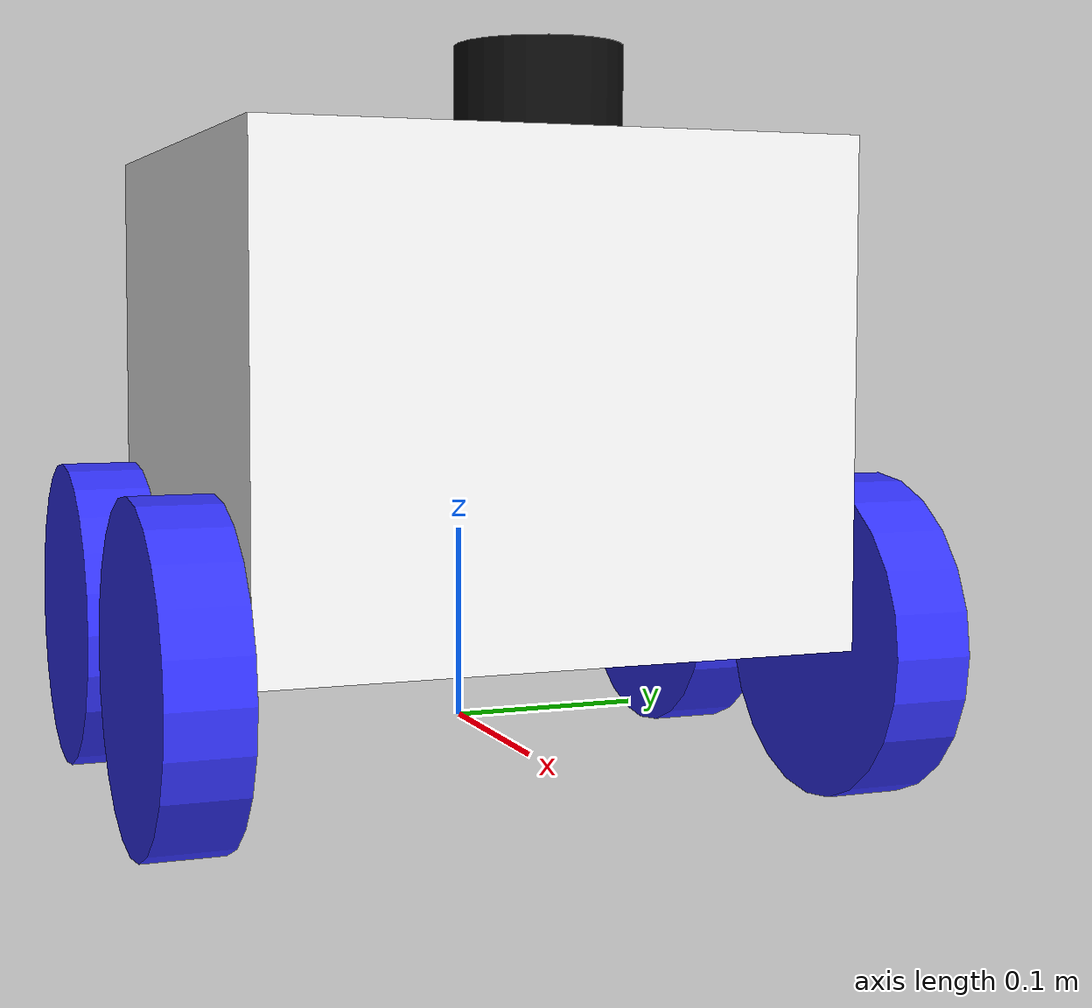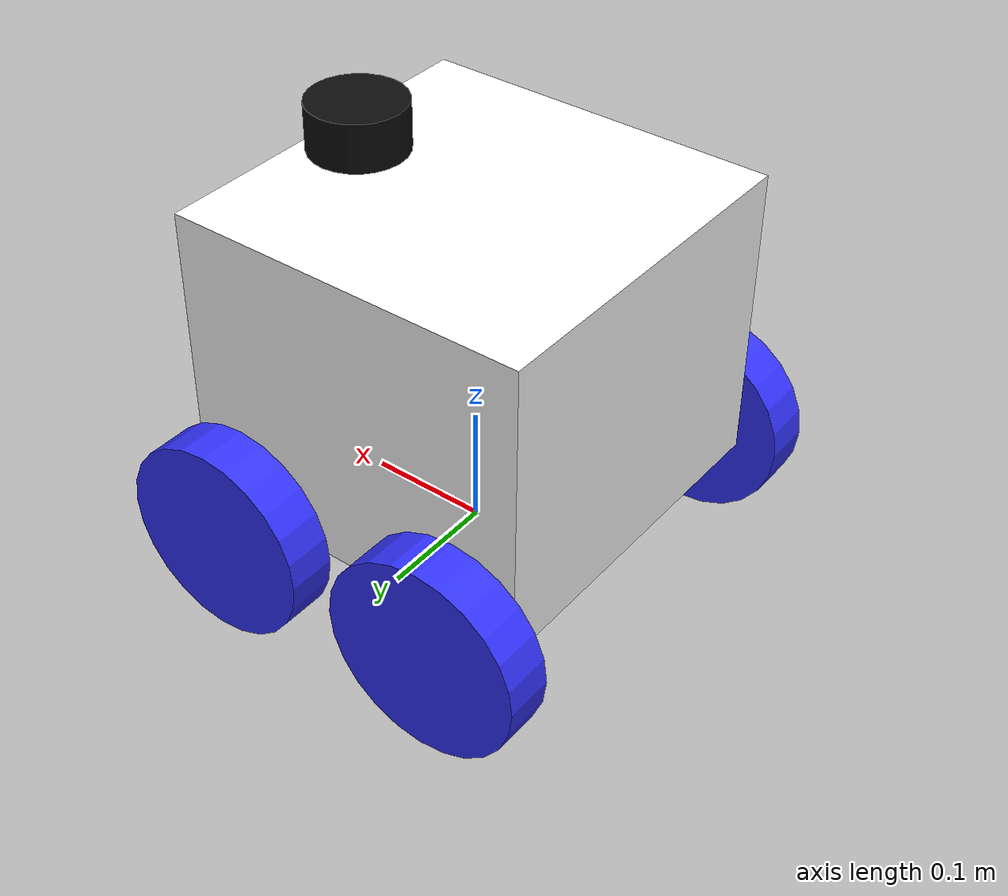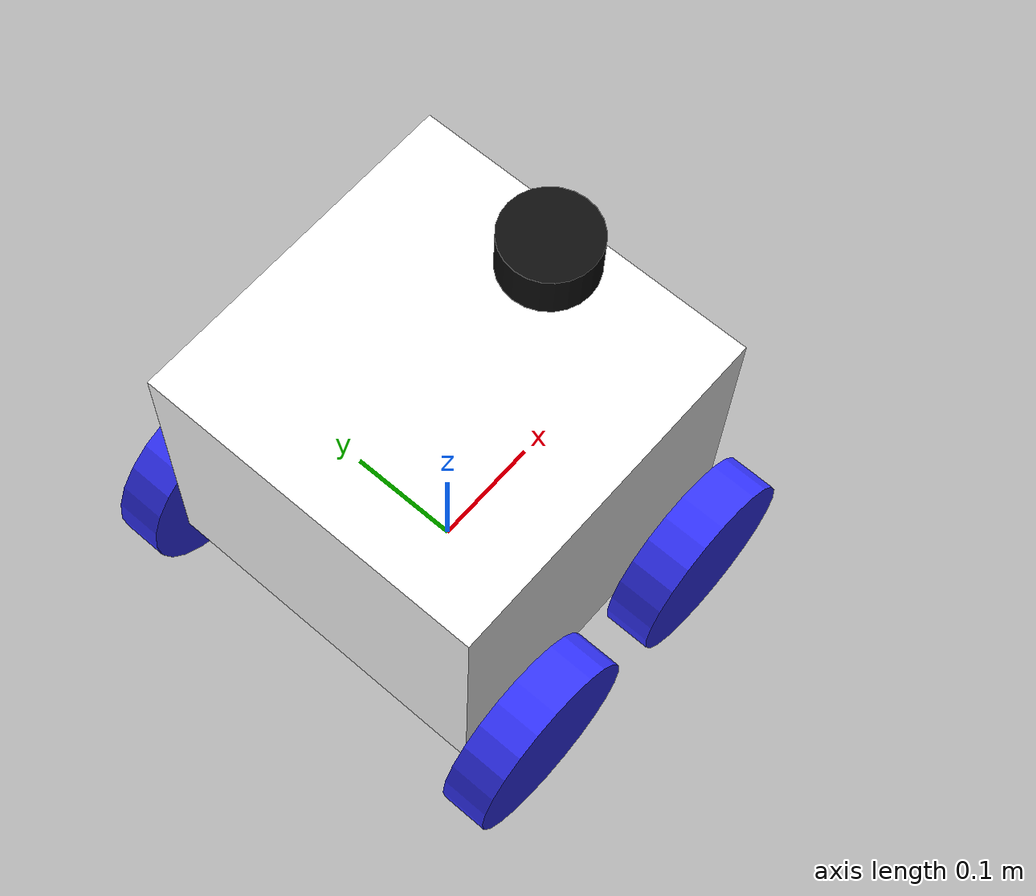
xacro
<?xml version="1.0"?>
<robot name="robot" xmlns:xacro="http://www.ros.org/wiki/xacro">

  <xacro:include filename="$(find sim_bot)/description/robot_core.xacro"/>
  <xacro:include filename="$(find sim_bot)/description/ros2_control.xacro"/>
  <xacro:include filename="$(find sim_bot)/description/gazebo_control_plugin.xacro"/>
  <xacro:include filename="$(find sim_bot)/description/lidar.xacro"/>
  <xacro:include filename="$(find sim_bot)/description/imu.xacro"/>

  <xacro:robot_core/>
  <xacro:sim_bot_ros2_control/>
  <xacro:sim_bot_gazebo_control_plugin/>
  <xacro:sim_bot_lidar/>
  <xacro:sim_bot_imu/>

</robot>

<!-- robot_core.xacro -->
<robot xmlns:xacro="http://www.ros.org/wiki/xacro">

  <xacro:include filename="$(find sim_bot)/description/inertial_macros.xacro"/>

  <xacro:macro name="left_wheel" params="name parent origin rpy">

    <joint name="${name}_joint" type="continuous">
      <parent link="${parent}"/>
      <child link="${name}"/>
      <origin xyz="${origin}" rpy="${rpy}"/>
      <axis xyz="0 0 1"/>
    </joint>

    <link name="${name}">
      <visual>
        <geometry>
          <cylinder radius="0.08255" length="0.04"/>
        </geometry>
        <material name="blue"/>
      </visual>

      <collision>
        <geometry>
          <cylinder radius="0.08255" length="0.04"/>
        </geometry>
      </collision>

      <xacro:inertial_cylinder mass="0.1" radius="0.08255" length="0.04"/>
    </link>
  </xacro:macro>

  <xacro:macro name="right_wheel" params="name parent origin rpy">

    <joint name="${name}_joint" type="continuous">
      <parent link="${parent}"/>
      <child link="${name}"/>
      <origin xyz="${origin}" rpy="${rpy}"/>
      <axis xyz="0 0 -1"/>
    </joint>

    <link name="${name}">
      <visual>
        <geometry>
          <cylinder radius="0.08255" length="0.04"/>
        </geometry>
        <material name="blue"/>
      </visual>

      <collision>
        <geometry>
          <cylinder radius="0.08255" length="0.04"/>
        </geometry>
      </collision>

      <xacro:inertial_cylinder mass="0.1" radius="0.08255" length="0.04"/>
    </link>
  </xacro:macro>

  <xacro:macro name="robot_core">

    <material name="white">
      <color rgba="1 1 1 1"/>
    </material>

    <material name="blue">
      <color rgba="0.2 0.2 1 1"/>
    </material>

    <xacro:property name="M_PI" value="3.1415926535897931"/>
    <xacro:property name="left_rear_wheel_pos" value="-0.1 0.175 0"/>
    <xacro:property name="right_rear_wheel_pos" value="-0.1 -0.175 0"/>
    <xacro:property name="left_front_wheel_pos" value="0.1 0.175 0"/>
    <xacro:property name="right_front_wheel_pos" value="0.1 -0.175 0"/>

    <link name="base_link">
      <inertial>
        <mass value="0.001"/>
        <inertia ixx="0.0001" ixy="0" ixz="0" iyy="0.0001" iyz="0" izz="0.0001"/>
      </inertial>
    </link>

    <joint name="chassis_joint" type="fixed">
      <parent link="base_link"/>
      <child link="chassis"/>
      <origin xyz="0 0 0.05"/>
    </joint>

    <link name="chassis">
      <visual>
        <origin xyz="0 0 0.125"/>
        <geometry>
          <box size="0.3 0.3 0.25"/>
        </geometry>
        <material name="white"/>
      </visual>

      <collision>
        <origin xyz="0 0 0.125"/>
        <geometry>
          <box size="0.3 0.3 0.25"/>
        </geometry>
      </collision>

      <inertial>
        <mass value="1.0"/>
        <origin xyz="0 0 0.125"/>
        <inertia ixx="0.015" ixy="0" ixz="0" iyy="0.0375" iyz="0" izz="0.0375"/>
      </inertial>
    </link>

  <xacro:left_wheel
    name="left_rear_wheel"
    parent="chassis"
    origin="${left_rear_wheel_pos}"
    rpy="${-(M_PI/2)} 0 0"/>

  <xacro:right_wheel
    name="right_rear_wheel"
    parent="chassis"
    origin="${right_rear_wheel_pos}"
    rpy="${M_PI/2} 0 0"/>

  <xacro:left_wheel
    name="left_front_wheel"
    parent="chassis"
    origin="${left_front_wheel_pos}"
    rpy="${-(M_PI/2)} 0 0"/>

  <xacro:right_wheel
    name="right_front_wheel"
    parent="chassis"
    origin="${right_front_wheel_pos}"
    rpy="${M_PI/2} 0 0"/>

    <gazebo reference="chassis">
      <material>Gazebo/White</material>
      <mu1>0.2</mu1>
      <mu2>0.2</mu2>
      <selfCollide>true</selfCollide>
    </gazebo>

    <gazebo reference="left_rear_wheel">
      <material>Gazebo/Blue</material>
      <mu1>1.0</mu1>
      <mu2>1.0</mu2>
      <selfCollide>true</selfCollide>
    </gazebo>

    <gazebo reference="right_rear_wheel">
      <material>Gazebo/Blue</material>
      <mu1>1.0</mu1>
      <mu2>1.0</mu2>
      <selfCollide>true</selfCollide>
    </gazebo>

    <gazebo reference="left_front_wheel">
      <material>Gazebo/Blue</material>
      <mu1>1.0</mu1>
      <mu2>1.0</mu2>
      <selfCollide>true</selfCollide>
    </gazebo>

    <gazebo reference="right_front_wheel">
      <material>Gazebo/Blue</material>
      <mu1>1.0</mu1>
      <mu2>1.0</mu2>
      <selfCollide>true</selfCollide>
    </gazebo>

  </xacro:macro>

</robot>

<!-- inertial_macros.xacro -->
<robot xmlns:xacro="http://www.ros.org/wiki/xacro">

  <xacro:macro name="inertial_sphere" params="mass radius">
    <inertial>
      <origin xyz="0 0 0" rpy="0 0 0"/>
      <mass value="${mass}"/>
      <inertia
        ixx="${(2.0/5.0) * mass * radius * radius}"
        ixy="0.0"
        ixz="0.0"
        iyy="${(2.0/5.0) * mass * radius * radius}"
        iyz="0.0"
        izz="${(2.0/5.0) * mass * radius * radius}"/>
    </inertial>
  </xacro:macro>

  <xacro:macro name="inertial_box" params="mass x y z">
    <inertial>
      <origin xyz="0 0 0" rpy="0 0 0"/>
      <mass value="${mass}"/>
      <inertia
        ixx="${(1.0/12.0) * mass * (y * y + z * z)}"
        ixy="0.0"
        ixz="0.0"
        iyy="${(1.0/12.0) * mass * (x * x + z * z)}"
        iyz="0.0"
        izz="${(1.0/12.0) * mass * (x * x + y * y)}"/>
    </inertial>
  </xacro:macro>

  <xacro:macro name="inertial_cylinder" params="mass radius length">
    <inertial>
      <origin xyz="0 0 0" rpy="0 0 0"/>
      <mass value="${mass}"/>
      <inertia
        ixx="${(1.0/12.0) * mass * (3.0 * radius * radius + length * length)}"
        ixy="0.0"
        ixz="0.0"
        iyy="${(1.0/12.0) * mass * (3.0 * radius * radius + length * length)}"
        iyz="0.0"
        izz="${0.5 * mass * radius * radius}"/>
    </inertial>
  </xacro:macro>

</robot>

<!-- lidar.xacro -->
<robot xmlns:xacro="http://www.ros.org/wiki/xacro">

  <xacro:include filename="$(find sim_bot)/description/inertial_macros.xacro"/>

  <xacro:macro name="sim_bot_lidar">

    <material name="lidar_black">
      <color rgba="0.05 0.05 0.05 1"/>
    </material>

    <joint name="laser_joint" type="fixed">
      <parent link="chassis"/>
      <child link="laser_frame"/>
      <origin xyz="0.11 0 0.27" rpy="0 0 0"/>
    </joint>

    <link name="laser_frame">
      <visual>
        <geometry>
          <cylinder radius="0.04" length="0.04"/>
        </geometry>
        <material name="lidar_black"/>
      </visual>

      <collision>
        <geometry>
          <cylinder radius="0.04" length="0.04"/>
        </geometry>
      </collision>

      <xacro:inertial_cylinder mass="0.05" radius="0.04" length="0.04"/>
    </link>

    <gazebo reference="laser_frame">
      <material>Gazebo/Black</material>
      <sensor name="laser" type="gpu_lidar">
        <pose>0 0 0 0 0 0</pose>
        <topic>scan</topic>
        <gz_frame_id>laser_frame</gz_frame_id>
        <update_rate>10</update_rate>
        <always_on>1</always_on>
        <visualize>true</visualize>
        <lidar>
          <scan>
            <horizontal>
              <samples>180</samples>
              <resolution>1</resolution>
              <min_angle>-1.5708</min_angle>
              <max_angle>1.5708</max_angle>
            </horizontal>
            <vertical>
              <samples>1</samples>
              <resolution>1</resolution>
              <min_angle>0</min_angle>
              <max_angle>0</max_angle>
            </vertical>
          </scan>
          <range>
            <min>0.12</min>
            <max>12.0</max>
            <resolution>0.01</resolution>
          </range>
          <noise>
            <type>gaussian</type>
            <mean>0.0</mean>
            <stddev>0.01</stddev>
          </noise>
        </lidar>
      </sensor>
    </gazebo>

  </xacro:macro>

</robot>

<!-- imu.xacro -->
<robot xmlns:xacro="http://www.ros.org/wiki/xacro">

  <xacro:include filename="$(find sim_bot)/description/inertial_macros.xacro"/>

  <xacro:macro name="sim_bot_imu">

    <joint name="imu_joint" type="fixed">
      <parent link="chassis"/>
      <child link="imu_link"/>
      <origin xyz="0 0 0.05" rpy="0 0 0"/>
    </joint>

    <link name="imu_link">
      <visual>
        <geometry>
          <box size="0.02 0.02 0.005"/>
        </geometry>
      </visual>
      <collision>
        <geometry>
          <box size="0.02 0.02 0.005"/>
        </geometry>
      </collision>
      <xacro:inertial_box mass="0.01" x="0.02" y="0.02" z="0.005"/>
    </link>

    <gazebo reference="imu_link">
      <sensor name="imu_sensor" type="imu">
        <update_rate>100</update_rate>
        <always_on>1</always_on>
        <topic>imu</topic>
        <gz_frame_id>imu_link</gz_frame_id>
        <imu>
          <angular_velocity>
            <x><noise type="gaussian"><mean>0.0</mean><stddev>0.0003</stddev></noise></x>
            <y><noise type="gaussian"><mean>0.0</mean><stddev>0.0003</stddev></noise></y>
            <z><noise type="gaussian"><mean>0.0</mean><stddev>0.0003</stddev></noise></z>
          </angular_velocity>
          <linear_acceleration>
            <x><noise type="gaussian"><mean>0.0</mean><stddev>0.017</stddev></noise></x>
            <y><noise type="gaussian"><mean>0.0</mean><stddev>0.017</stddev></noise></y>
            <z><noise type="gaussian"><mean>0.0</mean><stddev>0.017</stddev></noise></z>
          </linear_acceleration>
        </imu>
      </sensor>
    </gazebo>

  </xacro:macro>

</robot>
